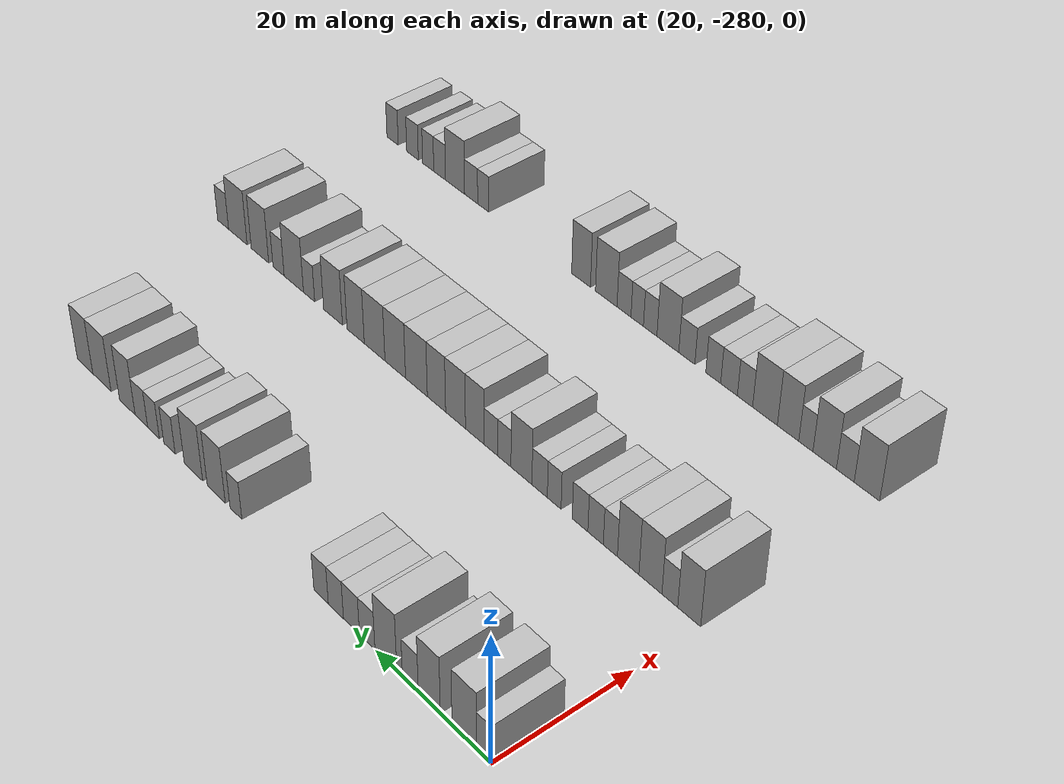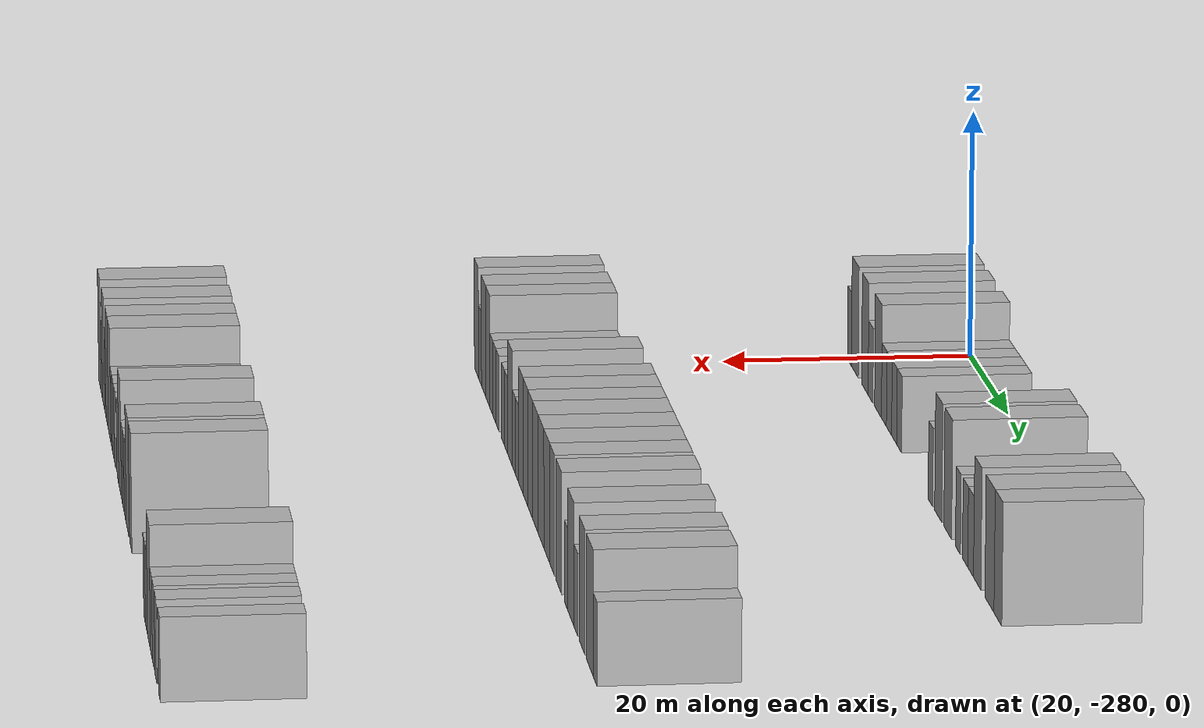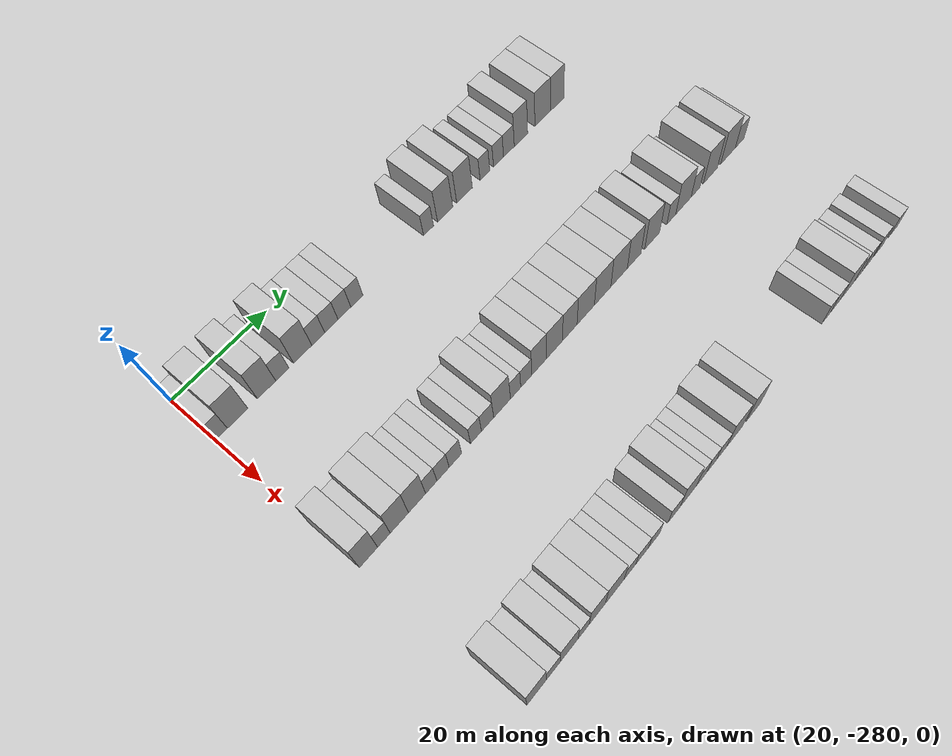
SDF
<sdf version="1.6">
 <world name="default">
  <model name="building_1">
   <static>1</static>
   <pose>25.0000 -278.7697 0 0.000000 0.000000 0.000000</pose>
   <link name="link">
    <pose>0 0 3.00 0 0 0</pose>
    <collision name="collision"><geometry><box><size>10.0000 2.4606 6.0000</size></box></geometry></collision>
    <visual name="visual">
     <cast_shadows>0</cast_shadows>
     <geometry><box><size>10.0000 2.4606 6.0000</size></box></geometry>
     <material>
      <script>
       <uri>model://HANNAS_wall/materials/scripts</uri>
       <uri>model://HANNAS_wall/materials/textures</uri>
       <name>vrc/HANNAS_wall</name>
      </script>
     </material>
    </visual>
   </link>
  </model>
  <model name="building_2">
   <static>1</static>
   <pose>25.0000 -275.4560 0 0.000000 0.000000 0.000000</pose>
   <link name="link">
    <pose>0 0 4.50 0 0 0</pose>
    <collision name="collision"><geometry><box><size>10.0000 4.1668 9.0000</size></box></geometry></collision>
    <visual name="visual">
     <cast_shadows>0</cast_shadows>
     <geometry><box><size>10.0000 4.1668 9.0000</size></box></geometry>
     <material>
      <script>
       <uri>model://HANNAS_wall/materials/scripts</uri>
       <uri>model://HANNAS_wall/materials/textures</uri>
       <name>vrc/HANNAS_wall</name>
      </script>
     </material>
    </visual>
   </link>
  </model>
  <model name="building_3">
   <static>1</static>
   <pose>25.0000 -269.4506 0 0.000000 0.000000 0.000000</pose>
   <link name="link">
    <pose>0 0 4.50 0 0 0</pose>
    <collision name="collision"><geometry><box><size>10.0000 3.8440 9.0000</size></box></geometry></collision>
    <visual name="visual">
     <cast_shadows>0</cast_shadows>
     <geometry><box><size>10.0000 3.8440 9.0000</size></box></geometry>
     <material>
      <script>
       <uri>model://HANNAS_wall/materials/scripts</uri>
       <uri>model://HANNAS_wall/materials/textures</uri>
       <name>vrc/HANNAS_wall</name>
      </script>
     </material>
    </visual>
   </link>
  </model>
  <model name="building_4">
   <static>1</static>
   <pose>25.0000 -266.1226 0 0.000000 0.000000 0.000000</pose>
   <link name="link">
    <pose>0 0 3.00 0 0 0</pose>
    <collision name="collision"><geometry><box><size>10.0000 2.8119 6.0000</size></box></geometry></collision>
    <visual name="visual">
     <cast_shadows>0</cast_shadows>
     <geometry><box><size>10.0000 2.8119 6.0000</size></box></geometry>
     <material>
      <script>
       <uri>model://HANNAS_wall/materials/scripts</uri>
       <uri>model://HANNAS_wall/materials/textures</uri>
       <name>vrc/HANNAS_wall</name>
      </script>
     </material>
    </visual>
   </link>
  </model>
  <model name="building_5">
   <static>1</static>
   <pose>25.0000 -261.7334 0 0.000000 0.000000 0.000000</pose>
   <link name="link">
    <pose>0 0 4.50 0 0 0</pose>
    <collision name="collision"><geometry><box><size>10.0000 3.9664 9.0000</size></box></geometry></collision>
    <visual name="visual">
     <cast_shadows>0</cast_shadows>
     <geometry><box><size>10.0000 3.9664 9.0000</size></box></geometry>
     <material>
      <script>
       <uri>model://HANNAS_wall/materials/scripts</uri>
       <uri>model://HANNAS_wall/materials/textures</uri>
       <name>vrc/HANNAS_wall</name>
      </script>
     </material>
    </visual>
   </link>
  </model>
  <model name="building_6">
   <static>1</static>
   <pose>25.0000 -258.3203 0 0.000000 0.000000 0.000000</pose>
   <link name="link">
    <pose>0 0 3.00 0 0 0</pose>
    <collision name="collision"><geometry><box><size>10.0000 2.8597 6.0000</size></box></geometry></collision>
    <visual name="visual">
     <cast_shadows>0</cast_shadows>
     <geometry><box><size>10.0000 2.8597 6.0000</size></box></geometry>
     <material>
      <script>
       <uri>model://HANNAS_wall/materials/scripts</uri>
       <uri>model://HANNAS_wall/materials/textures</uri>
       <name>vrc/HANNAS_wall</name>
      </script>
     </material>
    </visual>
   </link>
  </model>
  <model name="building_7">
   <static>1</static>
   <pose>25.0000 -255.3988 0 0.000000 0.000000 0.000000</pose>
   <link name="link">
    <pose>0 0 3.00 0 0 0</pose>
    <collision name="collision"><geometry><box><size>10.0000 2.9834 6.0000</size></box></geometry></collision>
    <visual name="visual">
     <cast_shadows>0</cast_shadows>
     <geometry><box><size>10.0000 2.9834 6.0000</size></box></geometry>
     <material>
      <script>
       <uri>model://HANNAS_wall/materials/scripts</uri>
       <uri>model://HANNAS_wall/materials/textures</uri>
       <name>vrc/HANNAS_wall</name>
      </script>
     </material>
    </visual>
   </link>
  </model>
  <model name="building_8">
   <static>1</static>
   <pose>25.0000 -252.4673 0 0.000000 0.000000 0.000000</pose>
   <link name="link">
    <pose>0 0 3.00 0 0 0</pose>
    <collision name="collision"><geometry><box><size>10.0000 2.8796 6.0000</size></box></geometry></collision>
    <visual name="visual">
     <cast_shadows>0</cast_shadows>
     <geometry><box><size>10.0000 2.8796 6.0000</size></box></geometry>
     <material>
      <script>
       <uri>model://HANNAS_wall/materials/scripts</uri>
       <uri>model://HANNAS_wall/materials/textures</uri>
       <name>vrc/HANNAS_wall</name>
      </script>
     </material>
    </visual>
   </link>
  </model>
  <model name="building_9">
   <static>1</static>
   <pose>25.0000 -249.6396 0 0.000000 0.000000 0.000000</pose>
   <link name="link">
    <pose>0 0 3.00 0 0 0</pose>
    <collision name="collision"><geometry><box><size>10.0000 2.7757 6.0000</size></box></geometry></collision>
    <visual name="visual">
     <cast_shadows>0</cast_shadows>
     <geometry><box><size>10.0000 2.7757 6.0000</size></box></geometry>
     <material>
      <script>
       <uri>model://HANNAS_wall/materials/scripts</uri>
       <uri>model://HANNAS_wall/materials/textures</uri>
       <name>vrc/HANNAS_wall</name>
      </script>
     </material>
    </visual>
   </link>
  </model>
  <model name="building_10">
   <static>1</static>
   <pose>25.0000 -232.5697 0 0.000000 0.000000 0.000000</pose>
   <link name="link">
    <pose>0 0 3.00 0 0 0</pose>
    <collision name="collision"><geometry><box><size>10.0000 2.4547 6.0000</size></box></geometry></collision>
    <visual name="visual">
     <cast_shadows>0</cast_shadows>
     <geometry><box><size>10.0000 2.4547 6.0000</size></box></geometry>
     <material>
      <script>
       <uri>model://HANNAS_wall/materials/scripts</uri>
       <uri>model://HANNAS_wall/materials/textures</uri>
       <name>vrc/HANNAS_wall</name>
      </script>
     </material>
    </visual>
   </link>
  </model>
  <model name="building_11">
   <static>1</static>
   <pose>25.0000 -228.4331 0 0.000000 0.000000 0.000000</pose>
   <link name="link">
    <pose>0 0 4.50 0 0 0</pose>
    <collision name="collision"><geometry><box><size>10.0000 3.8186 9.0000</size></box></geometry></collision>
    <visual name="visual">
     <cast_shadows>0</cast_shadows>
     <geometry><box><size>10.0000 3.8186 9.0000</size></box></geometry>
     <material>
      <script>
       <uri>model://HANNAS_wall/materials/scripts</uri>
       <uri>model://HANNAS_wall/materials/textures</uri>
       <name>vrc/HANNAS_wall</name>
      </script>
     </material>
    </visual>
   </link>
  </model>
  <model name="building_12">
   <static>1</static>
   <pose>25.0000 -223.5195 0 0.000000 0.000000 0.000000</pose>
   <link name="link">
    <pose>0 0 4.50 0 0 0</pose>
    <collision name="collision"><geometry><box><size>10.0000 4.0086 9.0000</size></box></geometry></collision>
    <visual name="visual">
     <cast_shadows>0</cast_shadows>
     <geometry><box><size>10.0000 4.0086 9.0000</size></box></geometry>
     <material>
      <script>
       <uri>model://HANNAS_wall/materials/scripts</uri>
       <uri>model://HANNAS_wall/materials/textures</uri>
       <name>vrc/HANNAS_wall</name>
      </script>
     </material>
    </visual>
   </link>
  </model>
  <model name="building_13">
   <static>1</static>
   <pose>25.0000 -218.2495 0 0.000000 0.000000 0.000000</pose>
   <link name="link">
    <pose>0 0 3.00 0 0 0</pose>
    <collision name="collision"><geometry><box><size>10.0000 2.5314 6.0000</size></box></geometry></collision>
    <visual name="visual">
     <cast_shadows>0</cast_shadows>
     <geometry><box><size>10.0000 2.5314 6.0000</size></box></geometry>
     <material>
      <script>
       <uri>model://HANNAS_wall/materials/scripts</uri>
       <uri>model://HANNAS_wall/materials/textures</uri>
       <name>vrc/HANNAS_wall</name>
      </script>
     </material>
    </visual>
   </link>
  </model>
  <model name="building_14">
   <static>1</static>
   <pose>25.0000 -214.6577 0 0.000000 0.000000 0.000000</pose>
   <link name="link">
    <pose>0 0 3.00 0 0 0</pose>
    <collision name="collision"><geometry><box><size>10.0000 2.6521 6.0000</size></box></geometry></collision>
    <visual name="visual">
     <cast_shadows>0</cast_shadows>
     <geometry><box><size>10.0000 2.6521 6.0000</size></box></geometry>
     <material>
      <script>
       <uri>model://HANNAS_wall/materials/scripts</uri>
       <uri>model://HANNAS_wall/materials/textures</uri>
       <name>vrc/HANNAS_wall</name>
      </script>
     </material>
    </visual>
   </link>
  </model>
  <model name="building_15">
   <static>1</static>
   <pose>25.0000 -211.8904 0 0.000000 0.000000 0.000000</pose>
   <link name="link">
    <pose>0 0 3.00 0 0 0</pose>
    <collision name="collision"><geometry><box><size>10.0000 2.8824 6.0000</size></box></geometry></collision>
    <visual name="visual">
     <cast_shadows>0</cast_shadows>
     <geometry><box><size>10.0000 2.8824 6.0000</size></box></geometry>
     <material>
      <script>
       <uri>model://HANNAS_wall/materials/scripts</uri>
       <uri>model://HANNAS_wall/materials/textures</uri>
       <name>vrc/HANNAS_wall</name>
      </script>
     </material>
    </visual>
   </link>
  </model>
  <model name="building_16">
   <static>1</static>
   <pose>25.0000 -208.6323 0 0.000000 0.000000 0.000000</pose>
   <link name="link">
    <pose>0 0 4.50 0 0 0</pose>
    <collision name="collision"><geometry><box><size>10.0000 3.6338 9.0000</size></box></geometry></collision>
    <visual name="visual">
     <cast_shadows>0</cast_shadows>
     <geometry><box><size>10.0000 3.6338 9.0000</size></box></geometry>
     <material>
      <script>
       <uri>model://HANNAS_wall/materials/scripts</uri>
       <uri>model://HANNAS_wall/materials/textures</uri>
       <name>vrc/HANNAS_wall</name>
      </script>
     </material>
    </visual>
   </link>
  </model>
  <model name="building_17">
   <static>1</static>
   <pose>25.0000 -202.6358 0 0.000000 0.000000 0.000000</pose>
   <link name="link">
    <pose>0 0 4.50 0 0 0</pose>
    <collision name="collision"><geometry><box><size>10.0000 4.3593 9.0000</size></box></geometry></collision>
    <visual name="visual">
     <cast_shadows>0</cast_shadows>
     <geometry><box><size>10.0000 4.3593 9.0000</size></box></geometry>
     <material>
      <script>
       <uri>model://HANNAS_wall/materials/scripts</uri>
       <uri>model://HANNAS_wall/materials/textures</uri>
       <name>vrc/HANNAS_wall</name>
      </script>
     </material>
    </visual>
   </link>
  </model>
  <model name="building_18">
   <static>1</static>
   <pose>25.0000 -198.5777 0 0.000000 0.000000 0.000000</pose>
   <link name="link">
    <pose>0 0 4.50 0 0 0</pose>
    <collision name="collision"><geometry><box><size>10.0000 3.7568 9.0000</size></box></geometry></collision>
    <visual name="visual">
     <cast_shadows>0</cast_shadows>
     <geometry><box><size>10.0000 3.7568 9.0000</size></box></geometry>
     <material>
      <script>
       <uri>model://HANNAS_wall/materials/scripts</uri>
       <uri>model://HANNAS_wall/materials/textures</uri>
       <name>vrc/HANNAS_wall</name>
      </script>
     </material>
    </visual>
   </link>
  </model>
  <model name="building_126">
   <static>1</static>
   <pose>55.0000 -278.1333 0 0.000000 0.000000 0.000000</pose>
   <link name="link">
    <pose>0 0 4.50 0 0 0</pose>
    <collision name="collision"><geometry><box><size>10.0000 3.7335 9.0000</size></box></geometry></collision>
    <visual name="visual">
     <cast_shadows>0</cast_shadows>
     <geometry><box><size>10.0000 3.7335 9.0000</size></box></geometry>
     <material>
      <script>
       <uri>model://HANNAS_wall/materials/scripts</uri>
       <uri>model://HANNAS_wall/materials/textures</uri>
       <name>vrc/HANNAS_wall</name>
      </script>
     </material>
    </visual>
   </link>
  </model>
  <model name="building_127">
   <static>1</static>
   <pose>55.0000 -274.9632 0 0.000000 0.000000 0.000000</pose>
   <link name="link">
    <pose>0 0 3.00 0 0 0</pose>
    <collision name="collision"><geometry><box><size>10.0000 2.6067 6.0000</size></box></geometry></collision>
    <visual name="visual">
     <cast_shadows>0</cast_shadows>
     <geometry><box><size>10.0000 2.6067 6.0000</size></box></geometry>
     <material>
      <script>
       <uri>model://HANNAS_wall/materials/scripts</uri>
       <uri>model://HANNAS_wall/materials/textures</uri>
       <name>vrc/HANNAS_wall</name>
      </script>
     </material>
    </visual>
   </link>
  </model>
  <model name="building_128">
   <static>1</static>
   <pose>55.0000 -271.7289 0 0.000000 0.000000 0.000000</pose>
   <link name="link">
    <pose>0 0 4.50 0 0 0</pose>
    <collision name="collision"><geometry><box><size>10.0000 3.8618 9.0000</size></box></geometry></collision>
    <visual name="visual">
     <cast_shadows>0</cast_shadows>
     <geometry><box><size>10.0000 3.8618 9.0000</size></box></geometry>
     <material>
      <script>
       <uri>model://HANNAS_wall/materials/scripts</uri>
       <uri>model://HANNAS_wall/materials/textures</uri>
       <name>vrc/HANNAS_wall</name>
      </script>
     </material>
    </visual>
   </link>
  </model>
  <model name="building_129">
   <static>1</static>
   <pose>55.0000 -267.9640 0 0.000000 0.000000 0.000000</pose>
   <link name="link">
    <pose>0 0 4.50 0 0 0</pose>
    <collision name="collision"><geometry><box><size>10.0000 3.6680 9.0000</size></box></geometry></collision>
    <visual name="visual">
     <cast_shadows>0</cast_shadows>
     <geometry><box><size>10.0000 3.6680 9.0000</size></box></geometry>
     <material>
      <script>
       <uri>model://HANNAS_wall/materials/scripts</uri>
       <uri>model://HANNAS_wall/materials/textures</uri>
       <name>vrc/HANNAS_wall</name>
      </script>
     </material>
    </visual>
   </link>
  </model>
  <model name="building_130">
   <static>1</static>
   <pose>55.0000 -264.9039 0 0.000000 0.000000 0.000000</pose>
   <link name="link">
    <pose>0 0 3.00 0 0 0</pose>
    <collision name="collision"><geometry><box><size>10.0000 2.4523 6.0000</size></box></geometry></collision>
    <visual name="visual">
     <cast_shadows>0</cast_shadows>
     <geometry><box><size>10.0000 2.4523 6.0000</size></box></geometry>
     <material>
      <script>
       <uri>model://HANNAS_wall/materials/scripts</uri>
       <uri>model://HANNAS_wall/materials/textures</uri>
       <name>vrc/HANNAS_wall</name>
      </script>
     </material>
    </visual>
   </link>
  </model>
  <model name="building_131">
   <static>1</static>
   <pose>55.0000 -262.3255 0 0.000000 0.000000 0.000000</pose>
   <link name="link">
    <pose>0 0 3.00 0 0 0</pose>
    <collision name="collision"><geometry><box><size>10.0000 2.7044 6.0000</size></box></geometry></collision>
    <visual name="visual">
     <cast_shadows>0</cast_shadows>
     <geometry><box><size>10.0000 2.7044 6.0000</size></box></geometry>
     <material>
      <script>
       <uri>model://HANNAS_wall/materials/scripts</uri>
       <uri>model://HANNAS_wall/materials/textures</uri>
       <name>vrc/HANNAS_wall</name>
      </script>
     </material>
    </visual>
   </link>
  </model>
  <model name="building_132">
   <static>1</static>
   <pose>55.0000 -259.5845 0 0.000000 0.000000 0.000000</pose>
   <link name="link">
    <pose>0 0 3.00 0 0 0</pose>
    <collision name="collision"><geometry><box><size>10.0000 2.7777 6.0000</size></box></geometry></collision>
    <visual name="visual">
     <cast_shadows>0</cast_shadows>
     <geometry><box><size>10.0000 2.7777 6.0000</size></box></geometry>
     <material>
      <script>
       <uri>model://HANNAS_wall/materials/scripts</uri>
       <uri>model://HANNAS_wall/materials/textures</uri>
       <name>vrc/HANNAS_wall</name>
      </script>
     </material>
    </visual>
   </link>
  </model>
  <model name="building_133">
   <static>1</static>
   <pose>55.0000 -254.9487 0 0.000000 0.000000 0.000000</pose>
   <link name="link">
    <pose>0 0 3.00 0 0 0</pose>
    <collision name="collision"><geometry><box><size>10.0000 2.4940 6.0000</size></box></geometry></collision>
    <visual name="visual">
     <cast_shadows>0</cast_shadows>
     <geometry><box><size>10.0000 2.4940 6.0000</size></box></geometry>
     <material>
      <script>
       <uri>model://HANNAS_wall/materials/scripts</uri>
       <uri>model://HANNAS_wall/materials/textures</uri>
       <name>vrc/HANNAS_wall</name>
      </script>
     </material>
    </visual>
   </link>
  </model>
  <model name="building_134">
   <static>1</static>
   <pose>55.0000 -252.2892 0 0.000000 0.000000 0.000000</pose>
   <link name="link">
    <pose>0 0 3.00 0 0 0</pose>
    <collision name="collision"><geometry><box><size>10.0000 2.8250 6.0000</size></box></geometry></collision>
    <visual name="visual">
     <cast_shadows>0</cast_shadows>
     <geometry><box><size>10.0000 2.8250 6.0000</size></box></geometry>
     <material>
      <script>
       <uri>model://HANNAS_wall/materials/scripts</uri>
       <uri>model://HANNAS_wall/materials/textures</uri>
       <name>vrc/HANNAS_wall</name>
      </script>
     </material>
    </visual>
   </link>
  </model>
  <model name="building_135">
   <static>1</static>
   <pose>55.0000 -248.9125 0 0.000000 0.000000 0.000000</pose>
   <link name="link">
    <pose>0 0 4.50 0 0 0</pose>
    <collision name="collision"><geometry><box><size>10.0000 3.9284 9.0000</size></box></geometry></collision>
    <visual name="visual">
     <cast_shadows>0</cast_shadows>
     <geometry><box><size>10.0000 3.9284 9.0000</size></box></geometry>
     <material>
      <script>
       <uri>model://HANNAS_wall/materials/scripts</uri>
       <uri>model://HANNAS_wall/materials/textures</uri>
       <name>vrc/HANNAS_wall</name>
      </script>
     </material>
    </visual>
   </link>
  </model>
  <model name="building_136">
   <static>1</static>
   <pose>55.0000 -245.7226 0 0.000000 0.000000 0.000000</pose>
   <link name="link">
    <pose>0 0 3.00 0 0 0</pose>
    <collision name="collision"><geometry><box><size>10.0000 2.4514 6.0000</size></box></geometry></collision>
    <visual name="visual">
     <cast_shadows>0</cast_shadows>
     <geometry><box><size>10.0000 2.4514 6.0000</size></box></geometry>
     <material>
      <script>
       <uri>model://HANNAS_wall/materials/scripts</uri>
       <uri>model://HANNAS_wall/materials/textures</uri>
       <name>vrc/HANNAS_wall</name>
      </script>
     </material>
    </visual>
   </link>
  </model>
  <model name="building_137">
   <static>1</static>
   <pose>55.0000 -243.1699 0 0.000000 0.000000 0.000000</pose>
   <link name="link">
    <pose>0 0 3.00 0 0 0</pose>
    <collision name="collision"><geometry><box><size>10.0000 2.6542 6.0000</size></box></geometry></collision>
    <visual name="visual">
     <cast_shadows>0</cast_shadows>
     <geometry><box><size>10.0000 2.6542 6.0000</size></box></geometry>
     <material>
      <script>
       <uri>model://HANNAS_wall/materials/scripts</uri>
       <uri>model://HANNAS_wall/materials/textures</uri>
       <name>vrc/HANNAS_wall</name>
      </script>
     </material>
    </visual>
   </link>
  </model>
  <model name="building_138">
   <static>1</static>
   <pose>55.0000 -240.0265 0 0.000000 0.000000 0.000000</pose>
   <link name="link">
    <pose>0 0 4.50 0 0 0</pose>
    <collision name="collision"><geometry><box><size>10.0000 3.6325 9.0000</size></box></geometry></collision>
    <visual name="visual">
     <cast_shadows>0</cast_shadows>
     <geometry><box><size>10.0000 3.6325 9.0000</size></box></geometry>
     <material>
      <script>
       <uri>model://HANNAS_wall/materials/scripts</uri>
       <uri>model://HANNAS_wall/materials/textures</uri>
       <name>vrc/HANNAS_wall</name>
      </script>
     </material>
    </visual>
   </link>
  </model>
  <model name="building_139">
   <static>1</static>
   <pose>55.0000 -236.2486 0 0.000000 0.000000 0.000000</pose>
   <link name="link">
    <pose>0 0 4.50 0 0 0</pose>
    <collision name="collision"><geometry><box><size>10.0000 3.9233 9.0000</size></box></geometry></collision>
    <visual name="visual">
     <cast_shadows>0</cast_shadows>
     <geometry><box><size>10.0000 3.9233 9.0000</size></box></geometry>
     <material>
      <script>
       <uri>model://HANNAS_wall/materials/scripts</uri>
       <uri>model://HANNAS_wall/materials/textures</uri>
       <name>vrc/HANNAS_wall</name>
      </script>
     </material>
    </visual>
   </link>
  </model>
  <model name="building_140">
   <static>1</static>
   <pose>55.0000 -232.4511 0 0.000000 0.000000 0.000000</pose>
   <link name="link">
    <pose>0 0 4.50 0 0 0</pose>
    <collision name="collision"><geometry><box><size>10.0000 3.6718 9.0000</size></box></geometry></collision>
    <visual name="visual">
     <cast_shadows>0</cast_shadows>
     <geometry><box><size>10.0000 3.6718 9.0000</size></box></geometry>
     <material>
      <script>
       <uri>model://HANNAS_wall/materials/scripts</uri>
       <uri>model://HANNAS_wall/materials/textures</uri>
       <name>vrc/HANNAS_wall</name>
      </script>
     </material>
    </visual>
   </link>
  </model>
  <model name="building_141">
   <static>1</static>
   <pose>55.0000 -228.3855 0 0.000000 0.000000 0.000000</pose>
   <link name="link">
    <pose>0 0 4.50 0 0 0</pose>
    <collision name="collision"><geometry><box><size>10.0000 4.4593 9.0000</size></box></geometry></collision>
    <visual name="visual">
     <cast_shadows>0</cast_shadows>
     <geometry><box><size>10.0000 4.4593 9.0000</size></box></geometry>
     <material>
      <script>
       <uri>model://HANNAS_wall/materials/scripts</uri>
       <uri>model://HANNAS_wall/materials/textures</uri>
       <name>vrc/HANNAS_wall</name>
      </script>
     </material>
    </visual>
   </link>
  </model>
  <model name="building_142">
   <static>1</static>
   <pose>55.0000 -224.0040 0 0.000000 0.000000 0.000000</pose>
   <link name="link">
    <pose>0 0 4.50 0 0 0</pose>
    <collision name="collision"><geometry><box><size>10.0000 4.3038 9.0000</size></box></geometry></collision>
    <visual name="visual">
     <cast_shadows>0</cast_shadows>
     <geometry><box><size>10.0000 4.3038 9.0000</size></box></geometry>
     <material>
      <script>
       <uri>model://HANNAS_wall/materials/scripts</uri>
       <uri>model://HANNAS_wall/materials/textures</uri>
       <name>vrc/HANNAS_wall</name>
      </script>
     </material>
    </visual>
   </link>
  </model>
  <model name="building_143">
   <static>1</static>
   <pose>55.0000 -219.6552 0 0.000000 0.000000 0.000000</pose>
   <link name="link">
    <pose>0 0 4.50 0 0 0</pose>
    <collision name="collision"><geometry><box><size>10.0000 4.3937 9.0000</size></box></geometry></collision>
    <visual name="visual">
     <cast_shadows>0</cast_shadows>
     <geometry><box><size>10.0000 4.3937 9.0000</size></box></geometry>
     <material>
      <script>
       <uri>model://HANNAS_wall/materials/scripts</uri>
       <uri>model://HANNAS_wall/materials/textures</uri>
       <name>vrc/HANNAS_wall</name>
      </script>
     </material>
    </visual>
   </link>
  </model>
  <model name="building_144">
   <static>1</static>
   <pose>55.0000 -215.5925 0 0.000000 0.000000 0.000000</pose>
   <link name="link">
    <pose>0 0 4.50 0 0 0</pose>
    <collision name="collision"><geometry><box><size>10.0000 3.7318 9.0000</size></box></geometry></collision>
    <visual name="visual">
     <cast_shadows>0</cast_shadows>
     <geometry><box><size>10.0000 3.7318 9.0000</size></box></geometry>
     <material>
      <script>
       <uri>model://HANNAS_wall/materials/scripts</uri>
       <uri>model://HANNAS_wall/materials/textures</uri>
       <name>vrc/HANNAS_wall</name>
      </script>
     </material>
    </visual>
   </link>
  </model>
  <model name="building_145">
   <static>1</static>
   <pose>55.0000 -210.6459 0 0.000000 0.000000 0.000000</pose>
   <link name="link">
    <pose>0 0 4.50 0 0 0</pose>
    <collision name="collision"><geometry><box><size>10.0000 4.1614 9.0000</size></box></geometry></collision>
    <visual name="visual">
     <cast_shadows>0</cast_shadows>
     <geometry><box><size>10.0000 4.1614 9.0000</size></box></geometry>
     <material>
      <script>
       <uri>model://HANNAS_wall/materials/scripts</uri>
       <uri>model://HANNAS_wall/materials/textures</uri>
       <name>vrc/HANNAS_wall</name>
      </script>
     </material>
    </visual>
   </link>
  </model>
  <model name="building_146">
   <static>1</static>
   <pose>55.0000 -205.2983 0 0.000000 0.000000 0.000000</pose>
   <link name="link">
    <pose>0 0 3.00 0 0 0</pose>
    <collision name="collision"><geometry><box><size>10.0000 2.5337 6.0000</size></box></geometry></collision>
    <visual name="visual">
     <cast_shadows>0</cast_shadows>
     <geometry><box><size>10.0000 2.5337 6.0000</size></box></geometry>
     <material>
      <script>
       <uri>model://HANNAS_wall/materials/scripts</uri>
       <uri>model://HANNAS_wall/materials/textures</uri>
       <name>vrc/HANNAS_wall</name>
      </script>
     </material>
    </visual>
   </link>
  </model>
  <model name="building_147">
   <static>1</static>
   <pose>55.0000 -201.8170 0 0.000000 0.000000 0.000000</pose>
   <link name="link">
    <pose>0 0 4.50 0 0 0</pose>
    <collision name="collision"><geometry><box><size>10.0000 4.4290 9.0000</size></box></geometry></collision>
    <visual name="visual">
     <cast_shadows>0</cast_shadows>
     <geometry><box><size>10.0000 4.4290 9.0000</size></box></geometry>
     <material>
      <script>
       <uri>model://HANNAS_wall/materials/scripts</uri>
       <uri>model://HANNAS_wall/materials/textures</uri>
       <name>vrc/HANNAS_wall</name>
      </script>
     </material>
    </visual>
   </link>
  </model>
  <model name="building_148">
   <static>1</static>
   <pose>55.0000 -198.3040 0 0.000000 0.000000 0.000000</pose>
   <link name="link">
    <pose>0 0 3.00 0 0 0</pose>
    <collision name="collision"><geometry><box><size>10.0000 2.5970 6.0000</size></box></geometry></collision>
    <visual name="visual">
     <cast_shadows>0</cast_shadows>
     <geometry><box><size>10.0000 2.5970 6.0000</size></box></geometry>
     <material>
      <script>
       <uri>model://HANNAS_wall/materials/scripts</uri>
       <uri>model://HANNAS_wall/materials/textures</uri>
       <name>vrc/HANNAS_wall</name>
      </script>
     </material>
    </visual>
   </link>
  </model>
  <model name="building_149">
   <static>1</static>
   <pose>55.0000 -193.9404 0 0.000000 0.000000 0.000000</pose>
   <link name="link">
    <pose>0 0 4.50 0 0 0</pose>
    <collision name="collision"><geometry><box><size>10.0000 4.1302 9.0000</size></box></geometry></collision>
    <visual name="visual">
     <cast_shadows>0</cast_shadows>
     <geometry><box><size>10.0000 4.1302 9.0000</size></box></geometry>
     <material>
      <script>
       <uri>model://HANNAS_wall/materials/scripts</uri>
       <uri>model://HANNAS_wall/materials/textures</uri>
       <name>vrc/HANNAS_wall</name>
      </script>
     </material>
    </visual>
   </link>
  </model>
  <model name="building_150">
   <static>1</static>
   <pose>55.0000 -188.6347 0 0.000000 0.000000 0.000000</pose>
   <link name="link">
    <pose>0 0 4.50 0 0 0</pose>
    <collision name="collision"><geometry><box><size>10.0000 4.4811 9.0000</size></box></geometry></collision>
    <visual name="visual">
     <cast_shadows>0</cast_shadows>
     <geometry><box><size>10.0000 4.4811 9.0000</size></box></geometry>
     <material>
      <script>
       <uri>model://HANNAS_wall/materials/scripts</uri>
       <uri>model://HANNAS_wall/materials/textures</uri>
       <name>vrc/HANNAS_wall</name>
      </script>
     </material>
    </visual>
   </link>
  </model>
  <model name="building_151">
   <static>1</static>
   <pose>55.0000 -185.0538 0 0.000000 0.000000 0.000000</pose>
   <link name="link">
    <pose>0 0 3.00 0 0 0</pose>
    <collision name="collision"><geometry><box><size>10.0000 2.6808 6.0000</size></box></geometry></collision>
    <visual name="visual">
     <cast_shadows>0</cast_shadows>
     <geometry><box><size>10.0000 2.6808 6.0000</size></box></geometry>
     <material>
      <script>
       <uri>model://HANNAS_wall/materials/scripts</uri>
       <uri>model://HANNAS_wall/materials/textures</uri>
       <name>vrc/HANNAS_wall</name>
      </script>
     </material>
    </visual>
   </link>
  </model>
  <model name="building_259">
   <static>1</static>
   <pose>85.0000 -276.9433 0 0.000000 0.000000 0.000000</pose>
   <link name="link">
    <pose>0 0 4.50 0 0 0</pose>
    <collision name="collision"><geometry><box><size>10.0000 4.1133 9.0000</size></box></geometry></collision>
    <visual name="visual">
     <cast_shadows>0</cast_shadows>
     <geometry><box><size>10.0000 4.1133 9.0000</size></box></geometry>
     <material>
      <script>
       <uri>model://HANNAS_wall/materials/scripts</uri>
       <uri>model://HANNAS_wall/materials/textures</uri>
       <name>vrc/HANNAS_wall</name>
      </script>
     </material>
    </visual>
   </link>
  </model>
  <model name="building_260">
   <static>1</static>
   <pose>85.0000 -273.4326 0 0.000000 0.000000 0.000000</pose>
   <link name="link">
    <pose>0 0 3.00 0 0 0</pose>
    <collision name="collision"><geometry><box><size>10.0000 2.9081 6.0000</size></box></geometry></collision>
    <visual name="visual">
     <cast_shadows>0</cast_shadows>
     <geometry><box><size>10.0000 2.9081 6.0000</size></box></geometry>
     <material>
      <script>
       <uri>model://HANNAS_wall/materials/scripts</uri>
       <uri>model://HANNAS_wall/materials/textures</uri>
       <name>vrc/HANNAS_wall</name>
      </script>
     </material>
    </visual>
   </link>
  </model>
  <model name="building_261">
   <static>1</static>
   <pose>85.0000 -270.0202 0 0.000000 0.000000 0.000000</pose>
   <link name="link">
    <pose>0 0 4.50 0 0 0</pose>
    <collision name="collision"><geometry><box><size>10.0000 3.9167 9.0000</size></box></geometry></collision>
    <visual name="visual">
     <cast_shadows>0</cast_shadows>
     <geometry><box><size>10.0000 3.9167 9.0000</size></box></geometry>
     <material>
      <script>
       <uri>model://HANNAS_wall/materials/scripts</uri>
       <uri>model://HANNAS_wall/materials/textures</uri>
       <name>vrc/HANNAS_wall</name>
      </script>
     </material>
    </visual>
   </link>
  </model>
  <model name="building_262">
   <static>1</static>
   <pose>85.0000 -266.8613 0 0.000000 0.000000 0.000000</pose>
   <link name="link">
    <pose>0 0 3.00 0 0 0</pose>
    <collision name="collision"><geometry><box><size>10.0000 2.4011 6.0000</size></box></geometry></collision>
    <visual name="visual">
     <cast_shadows>0</cast_shadows>
     <geometry><box><size>10.0000 2.4011 6.0000</size></box></geometry>
     <material>
      <script>
       <uri>model://HANNAS_wall/materials/scripts</uri>
       <uri>model://HANNAS_wall/materials/textures</uri>
       <name>vrc/HANNAS_wall</name>
      </script>
     </material>
    </visual>
   </link>
  </model>
  <model name="building_263">
   <static>1</static>
   <pose>85.0000 -263.8290 0 0.000000 0.000000 0.000000</pose>
   <link name="link">
    <pose>0 0 4.50 0 0 0</pose>
    <collision name="collision"><geometry><box><size>10.0000 3.6634 9.0000</size></box></geometry></collision>
    <visual name="visual">
     <cast_shadows>0</cast_shadows>
     <geometry><box><size>10.0000 3.6634 9.0000</size></box></geometry>
     <material>
      <script>
       <uri>model://HANNAS_wall/materials/scripts</uri>
       <uri>model://HANNAS_wall/materials/textures</uri>
       <name>vrc/HANNAS_wall</name>
      </script>
     </material>
    </visual>
   </link>
  </model>
  <model name="building_264">
   <static>1</static>
   <pose>85.0000 -259.8376 0 0.000000 0.000000 0.000000</pose>
   <link name="link">
    <pose>0 0 4.50 0 0 0</pose>
    <collision name="collision"><geometry><box><size>10.0000 4.3194 9.0000</size></box></geometry></collision>
    <visual name="visual">
     <cast_shadows>0</cast_shadows>
     <geometry><box><size>10.0000 4.3194 9.0000</size></box></geometry>
     <material>
      <script>
       <uri>model://HANNAS_wall/materials/scripts</uri>
       <uri>model://HANNAS_wall/materials/textures</uri>
       <name>vrc/HANNAS_wall</name>
      </script>
     </material>
    </visual>
   </link>
  </model>
  <model name="building_265">
   <static>1</static>
   <pose>85.0000 -256.3311 0 0.000000 0.000000 0.000000</pose>
   <link name="link">
    <pose>0 0 3.00 0 0 0</pose>
    <collision name="collision"><geometry><box><size>10.0000 2.6938 6.0000</size></box></geometry></collision>
    <visual name="visual">
     <cast_shadows>0</cast_shadows>
     <geometry><box><size>10.0000 2.6938 6.0000</size></box></geometry>
     <material>
      <script>
       <uri>model://HANNAS_wall/materials/scripts</uri>
       <uri>model://HANNAS_wall/materials/textures</uri>
       <name>vrc/HANNAS_wall</name>
      </script>
     </material>
    </visual>
   </link>
  </model>
  <model name="building_266">
   <static>1</static>
   <pose>85.0000 -253.4872 0 0.000000 0.000000 0.000000</pose>
   <link name="link">
    <pose>0 0 3.00 0 0 0</pose>
    <collision name="collision"><geometry><box><size>10.0000 2.9940 6.0000</size></box></geometry></collision>
    <visual name="visual">
     <cast_shadows>0</cast_shadows>
     <geometry><box><size>10.0000 2.9940 6.0000</size></box></geometry>
     <material>
      <script>
       <uri>model://HANNAS_wall/materials/scripts</uri>
       <uri>model://HANNAS_wall/materials/textures</uri>
       <name>vrc/HANNAS_wall</name>
      </script>
     </material>
    </visual>
   </link>
  </model>
  <model name="building_267">
   <static>1</static>
   <pose>85.0000 -250.6385 0 0.000000 0.000000 0.000000</pose>
   <link name="link">
    <pose>0 0 3.00 0 0 0</pose>
    <collision name="collision"><geometry><box><size>10.0000 2.7033 6.0000</size></box></geometry></collision>
    <visual name="visual">
     <cast_shadows>0</cast_shadows>
     <geometry><box><size>10.0000 2.7033 6.0000</size></box></geometry>
     <material>
      <script>
       <uri>model://HANNAS_wall/materials/scripts</uri>
       <uri>model://HANNAS_wall/materials/textures</uri>
       <name>vrc/HANNAS_wall</name>
      </script>
     </material>
    </visual>
   </link>
  </model>
  <model name="building_268">
   <static>1</static>
   <pose>85.0000 -245.7953 0 0.000000 0.000000 0.000000</pose>
   <link name="link">
    <pose>0 0 3.00 0 0 0</pose>
    <collision name="collision"><geometry><box><size>10.0000 2.9832 6.0000</size></box></geometry></collision>
    <visual name="visual">
     <cast_shadows>0</cast_shadows>
     <geometry><box><size>10.0000 2.9832 6.0000</size></box></geometry>
     <material>
      <script>
       <uri>model://HANNAS_wall/materials/scripts</uri>
       <uri>model://HANNAS_wall/materials/textures</uri>
       <name>vrc/HANNAS_wall</name>
      </script>
     </material>
    </visual>
   </link>
  </model>
  <model name="building_269">
   <static>1</static>
   <pose>85.0000 -242.2432 0 0.000000 0.000000 0.000000</pose>
   <link name="link">
    <pose>0 0 4.50 0 0 0</pose>
    <collision name="collision"><geometry><box><size>10.0000 4.1210 9.0000</size></box></geometry></collision>
    <visual name="visual">
     <cast_shadows>0</cast_shadows>
     <geometry><box><size>10.0000 4.1210 9.0000</size></box></geometry>
     <material>
      <script>
       <uri>model://HANNAS_wall/materials/scripts</uri>
       <uri>model://HANNAS_wall/materials/textures</uri>
       <name>vrc/HANNAS_wall</name>
      </script>
     </material>
    </visual>
   </link>
  </model>
  <model name="building_270">
   <static>1</static>
   <pose>85.0000 -238.8952 0 0.000000 0.000000 0.000000</pose>
   <link name="link">
    <pose>0 0 3.00 0 0 0</pose>
    <collision name="collision"><geometry><box><size>10.0000 2.5749 6.0000</size></box></geometry></collision>
    <visual name="visual">
     <cast_shadows>0</cast_shadows>
     <geometry><box><size>10.0000 2.5749 6.0000</size></box></geometry>
     <material>
      <script>
       <uri>model://HANNAS_wall/materials/scripts</uri>
       <uri>model://HANNAS_wall/materials/textures</uri>
       <name>vrc/HANNAS_wall</name>
      </script>
     </material>
    </visual>
   </link>
  </model>
  <model name="building_271">
   <static>1</static>
   <pose>85.0000 -236.4056 0 0.000000 0.000000 0.000000</pose>
   <link name="link">
    <pose>0 0 3.00 0 0 0</pose>
    <collision name="collision"><geometry><box><size>10.0000 2.4044 6.0000</size></box></geometry></collision>
    <visual name="visual">
     <cast_shadows>0</cast_shadows>
     <geometry><box><size>10.0000 2.4044 6.0000</size></box></geometry>
     <material>
      <script>
       <uri>model://HANNAS_wall/materials/scripts</uri>
       <uri>model://HANNAS_wall/materials/textures</uri>
       <name>vrc/HANNAS_wall</name>
      </script>
     </material>
    </visual>
   </link>
  </model>
  <model name="building_272">
   <static>1</static>
   <pose>85.0000 -233.8384 0 0.000000 0.000000 0.000000</pose>
   <link name="link">
    <pose>0 0 3.00 0 0 0</pose>
    <collision name="collision"><geometry><box><size>10.0000 2.7300 6.0000</size></box></geometry></collision>
    <visual name="visual">
     <cast_shadows>0</cast_shadows>
     <geometry><box><size>10.0000 2.7300 6.0000</size></box></geometry>
     <material>
      <script>
       <uri>model://HANNAS_wall/materials/scripts</uri>
       <uri>model://HANNAS_wall/materials/textures</uri>
       <name>vrc/HANNAS_wall</name>
      </script>
     </material>
    </visual>
   </link>
  </model>
  <model name="building_273">
   <static>1</static>
   <pose>85.0000 -230.3410 0 0.000000 0.000000 0.000000</pose>
   <link name="link">
    <pose>0 0 4.50 0 0 0</pose>
    <collision name="collision"><geometry><box><size>10.0000 4.2647 9.0000</size></box></geometry></collision>
    <visual name="visual">
     <cast_shadows>0</cast_shadows>
     <geometry><box><size>10.0000 4.2647 9.0000</size></box></geometry>
     <material>
      <script>
       <uri>model://HANNAS_wall/materials/scripts</uri>
       <uri>model://HANNAS_wall/materials/textures</uri>
       <name>vrc/HANNAS_wall</name>
      </script>
     </material>
    </visual>
   </link>
  </model>
  <model name="building_274">
   <static>1</static>
   <pose>85.0000 -225.3095 0 0.000000 0.000000 0.000000</pose>
   <link name="link">
    <pose>0 0 4.50 0 0 0</pose>
    <collision name="collision"><geometry><box><size>10.0000 3.7984 9.0000</size></box></geometry></collision>
    <visual name="visual">
     <cast_shadows>0</cast_shadows>
     <geometry><box><size>10.0000 3.7984 9.0000</size></box></geometry>
     <material>
      <script>
       <uri>model://HANNAS_wall/materials/scripts</uri>
       <uri>model://HANNAS_wall/materials/textures</uri>
       <name>vrc/HANNAS_wall</name>
      </script>
     </material>
    </visual>
   </link>
  </model>
  <model name="building_275">
   <static>1</static>
   <pose>85.0000 -204.7002 0 0.000000 0.000000 0.000000</pose>
   <link name="link">
    <pose>0 0 3.00 0 0 0</pose>
    <collision name="collision"><geometry><box><size>10.0000 2.4734 6.0000</size></box></geometry></collision>
    <visual name="visual">
     <cast_shadows>0</cast_shadows>
     <geometry><box><size>10.0000 2.4734 6.0000</size></box></geometry>
     <material>
      <script>
       <uri>model://HANNAS_wall/materials/scripts</uri>
       <uri>model://HANNAS_wall/materials/textures</uri>
       <name>vrc/HANNAS_wall</name>
      </script>
     </material>
    </visual>
   </link>
  </model>
  <model name="building_276">
   <static>1</static>
   <pose>85.0000 -202.0136 0 0.000000 0.000000 0.000000</pose>
   <link name="link">
    <pose>0 0 3.00 0 0 0</pose>
    <collision name="collision"><geometry><box><size>10.0000 2.8999 6.0000</size></box></geometry></collision>
    <visual name="visual">
     <cast_shadows>0</cast_shadows>
     <geometry><box><size>10.0000 2.8999 6.0000</size></box></geometry>
     <material>
      <script>
       <uri>model://HANNAS_wall/materials/scripts</uri>
       <uri>model://HANNAS_wall/materials/textures</uri>
       <name>vrc/HANNAS_wall</name>
      </script>
     </material>
    </visual>
   </link>
  </model>
  <model name="building_277">
   <static>1</static>
   <pose>85.0000 -198.4139 0 0.000000 0.000000 0.000000</pose>
   <link name="link">
    <pose>0 0 4.50 0 0 0</pose>
    <collision name="collision"><geometry><box><size>10.0000 4.2994 9.0000</size></box></geometry></collision>
    <visual name="visual">
     <cast_shadows>0</cast_shadows>
     <geometry><box><size>10.0000 4.2994 9.0000</size></box></geometry>
     <material>
      <script>
       <uri>model://HANNAS_wall/materials/scripts</uri>
       <uri>model://HANNAS_wall/materials/textures</uri>
       <name>vrc/HANNAS_wall</name>
      </script>
     </material>
    </visual>
   </link>
  </model>
  <model name="building_278">
   <static>1</static>
   <pose>85.0000 -194.9231 0 0.000000 0.000000 0.000000</pose>
   <link name="link">
    <pose>0 0 3.00 0 0 0</pose>
    <collision name="collision"><geometry><box><size>10.0000 2.6821 6.0000</size></box></geometry></collision>
    <visual name="visual">
     <cast_shadows>0</cast_shadows>
     <geometry><box><size>10.0000 2.6821 6.0000</size></box></geometry>
     <material>
      <script>
       <uri>model://HANNAS_wall/materials/scripts</uri>
       <uri>model://HANNAS_wall/materials/textures</uri>
       <name>vrc/HANNAS_wall</name>
      </script>
     </material>
    </visual>
   </link>
  </model>
  <model name="building_279">
   <static>1</static>
   <pose>85.0000 -192.3033 0 0.000000 0.000000 0.000000</pose>
   <link name="link">
    <pose>0 0 3.00 0 0 0</pose>
    <collision name="collision"><geometry><box><size>10.0000 2.5575 6.0000</size></box></geometry></collision>
    <visual name="visual">
     <cast_shadows>0</cast_shadows>
     <geometry><box><size>10.0000 2.5575 6.0000</size></box></geometry>
     <material>
      <script>
       <uri>model://HANNAS_wall/materials/scripts</uri>
       <uri>model://HANNAS_wall/materials/textures</uri>
       <name>vrc/HANNAS_wall</name>
      </script>
     </material>
    </visual>
   </link>
  </model>
  <model name="building_280">
   <static>1</static>
   <pose>85.0000 -188.6621 0 0.000000 0.000000 0.000000</pose>
   <link name="link">
    <pose>0 0 3.00 0 0 0</pose>
    <collision name="collision"><geometry><box><size>10.0000 2.7250 6.0000</size></box></geometry></collision>
    <visual name="visual">
     <cast_shadows>0</cast_shadows>
     <geometry><box><size>10.0000 2.7250 6.0000</size></box></geometry>
     <material>
      <script>
       <uri>model://HANNAS_wall/materials/scripts</uri>
       <uri>model://HANNAS_wall/materials/textures</uri>
       <name>vrc/HANNAS_wall</name>
      </script>
     </material>
    </visual>
   </link>
  </model>
  <model name="building_281">
   <static>1</static>
   <pose>85.0000 -183.9623 0 0.000000 0.000000 0.000000</pose>
   <link name="link">
    <pose>0 0 3.00 0 0 0</pose>
    <collision name="collision"><geometry><box><size>10.0000 2.6746 6.0000</size></box></geometry></collision>
    <visual name="visual">
     <cast_shadows>0</cast_shadows>
     <geometry><box><size>10.0000 2.6746 6.0000</size></box></geometry>
     <material>
      <script>
       <uri>model://HANNAS_wall/materials/scripts</uri>
       <uri>model://HANNAS_wall/materials/textures</uri>
       <name>vrc/HANNAS_wall</name>
      </script>
     </material>
    </visual>
   </link>
  </model>
 </world>
</sdf>
